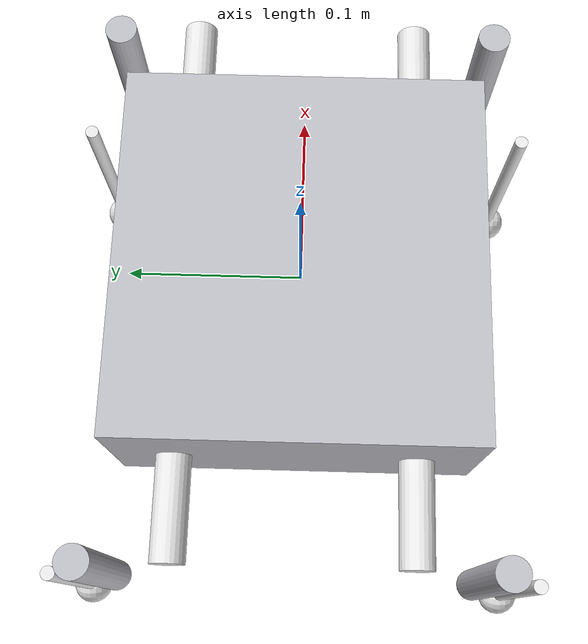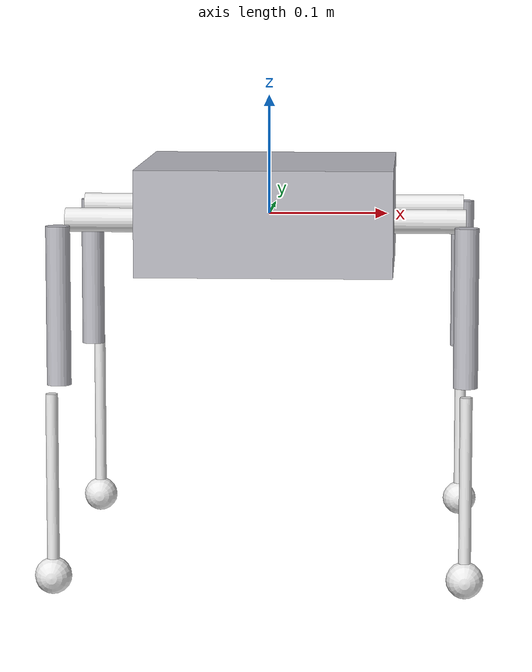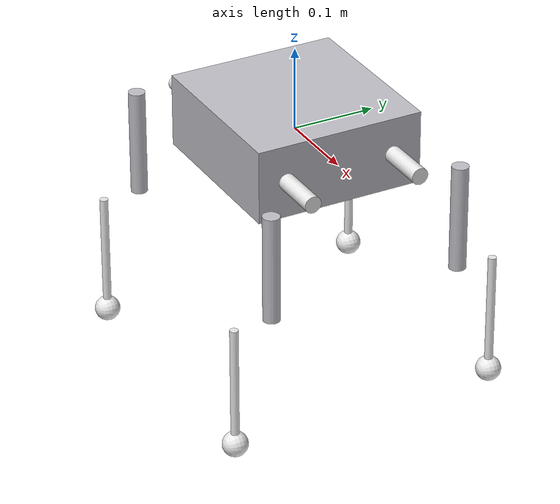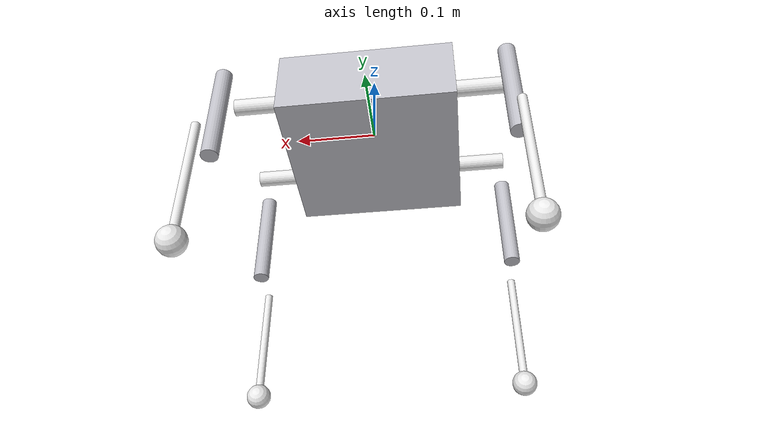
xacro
<?xml version="1.0"?>

<robot xmlns:xacro="http://www.ros.org/wiki/xacro" name="mors_sim">

  <xacro:include filename="materials.xacro"/>

    <xacro:property name="PI" value="3.1415926535897931"/>

    <!-- Meshes Address-->
    <xacro:property name="mesh_addr" value="./"/>

    <!-- Mass parameters-->
    <xacro:property name="body_mass" value="3.748"/>
    <xacro:property name="abad_mass" value="0.309"/>
    <xacro:property name="hip_mass" value="0.532"/>
    <xacro:property name="knee_mass" value="0.049"/>
    <xacro:property name="ef_mass" value="0.018"/>

    <!-- CoG Parameters -->
    <xacro:property name="body_cog_x" value="-0.00272"/>
    <xacro:property name="body_cog_y" value="0.000875"/>
    <xacro:property name="body_cog_z" value="0.000178"/>
    <xacro:property name="abad_cog_x" value="-0.00606"/>
    <xacro:property name="abad_cog_y" value="-0.000018"/>
    <xacro:property name="abad_cog_z" value="0.058144"/>
    <xacro:property name="hip_cog_x" value="0.034385"/>
    <xacro:property name="hip_cog_y" value="-0.000226"/>
    <xacro:property name="hip_cog_z" value="0.044820"/>
    <xacro:property name="knee_cog_x" value="0.058408"/>
    <xacro:property name="knee_cog_y" value="0.0"/>
    <xacro:property name="knee_cog_z" value="0.009288"/>

    <!-- Inertia -->
    <xacro:property name="body_ixx" value="0.012838176"/>
    <xacro:property name="body_ixy" value="-0.000006851"/>
    <xacro:property name="body_ixz" value="0.000156493"/>
    <xacro:property name="body_iyy" value="0.056852389"/>
    <xacro:property name="body_iyz" value="-0.000095392"/>
    <xacro:property name="body_izz" value="0.064034355"/>
    <xacro:property name="abad_ixx" value="0.000178705"/>
    <xacro:property name="abad_ixy" value="-1.02e-7"/>
    <xacro:property name="abad_ixz" value="-0.000003483"/>
    <xacro:property name="abad_iyy" value="0.000161337"/>
    <xacro:property name="abad_iyz" value="-5e-9"/>
    <xacro:property name="abad_izz" value="0.0001003"/>
    <xacro:property name="hip_ixx" value="0.000279734"/>
    <xacro:property name="hip_ixy" value="2.8e-7"/>
    <xacro:property name="hip_ixz" value="-0.000253770"/>
    <xacro:property name="hip_iyy" value="0.001715204"/>
    <xacro:property name="hip_iyz" value="-1.2e-6"/>
    <xacro:property name="hip_izz" value="0.001731949"/>
    <xacro:property name="knee_ixx" value="0.000003796"/>
    <xacro:property name="knee_ixy" value="0.0"/>
    <xacro:property name="knee_ixz" value="-0.000007744"/>
    <xacro:property name="knee_iyy" value="0.000208824"/>
    <xacro:property name="knee_iyz" value="0.0"/>
    <xacro:property name="knee_izz" value="0.000208730"/>

    <!-- Joints parameters-->
    <xacro:property name="velocity_max" value="30.0"/>
    <xacro:property name="torque_max" value="2000"/>
    <xacro:property name="damping" value="0.4"/>
    <xacro:property name="friction" value="0.55"/>
    <xacro:property name="theta_max" value="150"/>
    <xacro:property name="theta_min" value="-150"/>

    <!-- Leg parts attachment positions to the body-->
    <xacro:property name="abad_attach_x" value="0.1065"/>
    <xacro:property name="abad_attach_y" value="0.067"/>
    <xacro:property name="abad_attach_z" value="0.0"/>
    <xacro:property name="hip_attach_x" value="0.0215"/> <!-- candidate -->
    <xacro:property name="hip_attach_y" value="0.0"/>
    <xacro:property name="hip_attach_z" value="0.059"/>
    <xacro:property name="knee_attach_x" value="0.13"/>
    <xacro:property name="knee_attach_y" value="0.0"/>
    <xacro:property name="knee_attach_z" value="0.0645"/> <!-- candidate -->
    <xacro:property name="ef_attach_x" value="0.1485"/>
    <xacro:property name="ef_attach_y" value="0.0"/>
    <xacro:property name="ef_attach_z" value="0.012"/> <!-- candidate -->

    <xacro:macro name="default_inertial" params="mass ixx ixy ixz iyy iyz izz">
      <inertial>
        <mass value="${mass}"/>
        <inertia ixx="${ixx}" ixy="${ixy}" ixz="${ixz}"
          iyy="${iyy}" iyz="${iyz}"
          izz="${izz}" />
      </inertial>
    </xacro:macro>

  <!-- body -->
    <link name="base_link">
      <visual>
        <geometry>
          <box size="0.212 0.204 0.088"/>
        </geometry>
        <origin rpy="0 0 0" xyz="0 0 0"/>
        <material name="silver"/>
      </visual>
      <collision>
        <origin rpy="0 0 0" xyz="0 0 0"/>
        <geometry>
          <box size="0.212 0.204 0.088"/>
        </geometry>
      </collision>
      <inertial>
        <origin rpy="0 0 0" xyz="${body_cog_x} ${body_cog_y} ${body_cog_z}"/>
        <mass value="${body_mass}"/>
        <inertia ixx="${body_ixx}" ixy="${body_ixy}" ixz="${body_ixz}"
          iyy="${body_iyy}" iyz="${body_iyz}"
          izz="${body_izz}" />
      </inertial>
    </link>

  <!-- Script for building a leg-->
  <xacro:macro name="leg" params="side num x y sh_x_angle sh_y_angle sh_z_angle abad_angle_dir hip_sign">

    <!-- abad -->
    <joint name="abad_joint_${side}${num}" type="revolute">
      <parent link="base_link"/>
      <child link="abad_${side}${num}"/>
      <origin rpy="${sh_x_angle} ${sh_y_angle} ${sh_z_angle}" xyz="${x} ${y} ${abad_attach_z}"/>
      <axis xyz="0 0 ${abad_angle_dir}"/>
      <dynamics damping="${damping}" friction="${friction}"/>
      <limit effort="${torque_max}" velocity="${velocity_max}" lower="${theta_min*PI/180.0}" upper="${theta_max*PI/180.0}"/>
    </joint>

    <link name="abad_${side}${num}">
      <visual>
        <origin rpy="0 0 0" xyz="0 0 0.0295"/>
        <geometry>
          <cylinder length="0.059" radius="0.01"/>
        </geometry>
        <material name="white_blue"/>
      </visual>
      <collision>
        <origin rpy="0 0 0" xyz="0 0 0.0295"/>
        <geometry>
          <cylinder length="0.059" radius="0.01"/>
        </geometry>
      </collision>
      <inertial>
        <origin rpy="0 0 ${PI/2}" xyz="${abad_cog_x} ${abad_cog_y} ${abad_cog_z}"/>
        <mass value="${abad_mass}"/>
        <inertia ixx="${abad_ixx}" ixy="${abad_ixy}" ixz="${abad_ixz}"
          iyy="${abad_iyy}" iyz="${abad_iyz}"
          izz="${abad_izz}" />
      </inertial>
    </link>

    <!-- Hip-->
    <joint name="hip_joint_${side}${num}" type="revolute">
      <parent link="abad_${side}${num}"/>
      <child link="hip_${side}${num}"/>
      <origin rpy="${hip_sign*PI/2} ${-hip_sign*0*PI/2} ${hip_sign*PI/2}" xyz="${hip_attach_x} ${hip_attach_y} ${hip_attach_z}"/>
      <axis xyz="0 0 1"/>
      <dynamics damping="${damping}" friction="${friction}"/>
      <limit effort="${torque_max}" velocity="${velocity_max}" lower="${theta_min*PI/180.0}" upper="${theta_max*PI/180.0}"/>
    </joint>

    <link name="hip_${side}${num}">
      <visual>
        <origin rpy="0 ${PI/2} 0" xyz="0.065 0 0.03"/>
        <geometry>
            <cylinder length="0.13" radius="0.01"/>
        </geometry>
        <material name="silver"/>
      </visual>
      <collision>
        <origin rpy="0 ${PI/2} 0" xyz="0.065 0 0.03"/>
        <geometry>
          <cylinder length="0.13" radius="0.01"/>
        </geometry>
      </collision>
      <inertial>
        <origin rpy="0 0 0" xyz="${hip_cog_x} ${hip_cog_y} ${hip_cog_z}"/>
        <mass value="${hip_mass}"/>
        <inertia ixx="${hip_ixx}" ixy="${hip_ixy}" ixz="${hip_ixz}"
          iyy="${hip_iyy}" iyz="${hip_iyz}"
          izz="${hip_izz}" />
      </inertial>
    </link>

    <!-- Knee -->
    <joint name="knee_joint_${side}${num}" type="revolute">
      <parent link="hip_${side}${num}"/>
      <child link="knee_${side}${num}"/>
      <origin rpy="${PI} ${PI} ${PI}" xyz="${knee_attach_x} ${knee_attach_y} ${knee_attach_z}"/>
      <axis xyz="0 0 1"/>
      <dynamics damping="${damping}" friction="${friction}"/>
      <limit effort="${torque_max}" velocity="${velocity_max}" lower="${theta_min*PI/180.0}" upper="${theta_max*PI/180.0}"/>
    </joint>

    <link name="knee_${side}${num}">
      <visual>
        <origin rpy="0 ${PI/2} 0" xyz="0.07425 0 0.012"/>
        <geometry>
          <cylinder length="0.1485" radius="0.005"/>
        </geometry>
        <material name="white_blue"/>
      </visual>
      <collision>
        <origin rpy="0 ${PI/2} 0" xyz="0.07425 0 0.012"/>
        <geometry>
          <cylinder length="0.1485" radius="0.005"/>
        </geometry>
      </collision>
      <inertial>
        <origin rpy="0 0 0" xyz="${knee_cog_x} ${knee_cog_y} ${knee_cog_z}"/>
        <mass value="${knee_mass}"/>
        <inertia ixx="${knee_ixx}" ixy="${knee_ixy}" ixz="${knee_ixz}"
          iyy="${knee_iyy}" iyz="${knee_iyz}"
          izz="${knee_izz}" />
      </inertial>
    </link>

    <link name="ef_${side}${num}">
        <visual>
            <origin rpy="0 0 0" xyz="0 0 0"/>
            <geometry>
                <sphere radius="0.015"/>
            </geometry>
            <material name="white_blue"/>
        </visual>
        <collision>
            <geometry>
                <sphere radius="0.015"/>
            </geometry>
        </collision>
        <inertial>
            <origin rpy="0 0 0" xyz="-0.00272 0.000875 0.000178"/>
            <mass value="${ef_mass}"/>
            <inertia ixx="0.0000014" ixy="0.0" ixz="0.0" iyy="0.0000014" iyz="0.0" izz="0.0000014"/>
        </inertial>
    </link>

    <!-- End Effector-->
    <joint name="ef_joint_${side}${num}" type="fixed">
      <parent link="knee_${side}${num}"/>
      <child link="ef_${side}${num}"/>
      <origin rpy="0 0 0" xyz="${ef_attach_x} ${ef_attach_y} ${ef_attach_z}"/>
    </joint>

  </xacro:macro>

  <xacro:leg side="R" num="1" x="${abad_attach_x}" y="${-abad_attach_y}" sh_x_angle="${radians(-90)}" sh_y_angle="${radians(0)}" sh_z_angle="${radians(-90)}" abad_angle_dir="1" hip_sign="1"/>
  <xacro:leg side="L" num="1" x="${abad_attach_x}" y="${abad_attach_y}" sh_x_angle="${radians(90)}" sh_y_angle="${radians(0)}" sh_z_angle="${radians(90)}" abad_angle_dir="1" hip_sign="-1"/>
  <xacro:leg side="R" num="2" x="${-abad_attach_x}" y="${-abad_attach_y}" sh_x_angle="${radians(90)}" sh_y_angle="${radians(0)}" sh_z_angle="${radians(-90)}" abad_angle_dir="1" hip_sign="-1"/>
  <xacro:leg side="L" num="2" x="${-abad_attach_x}" y="${abad_attach_y}" sh_x_angle="${radians(-90)}" sh_y_angle="${radians(0)}" sh_z_angle="${radians(90)}" abad_angle_dir="1" hip_sign="1"/>

</robot>
